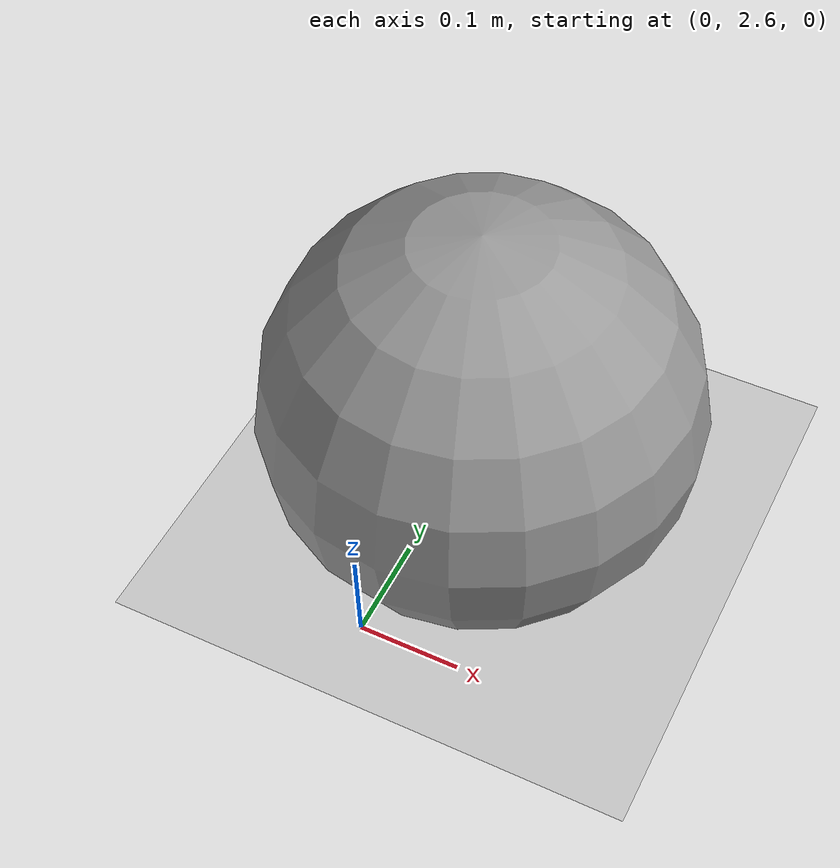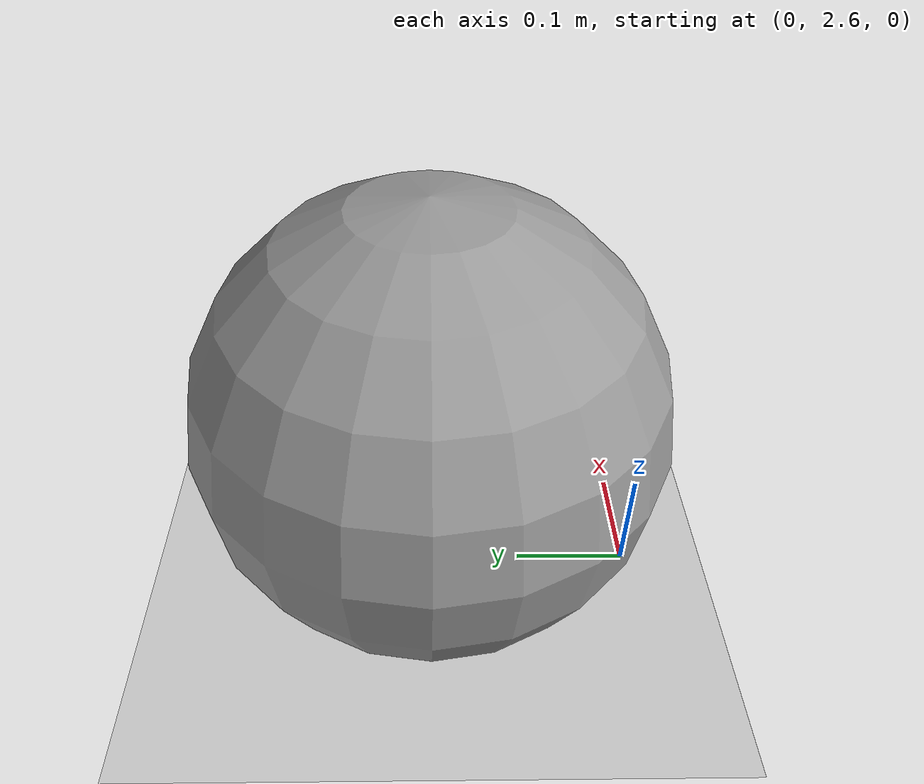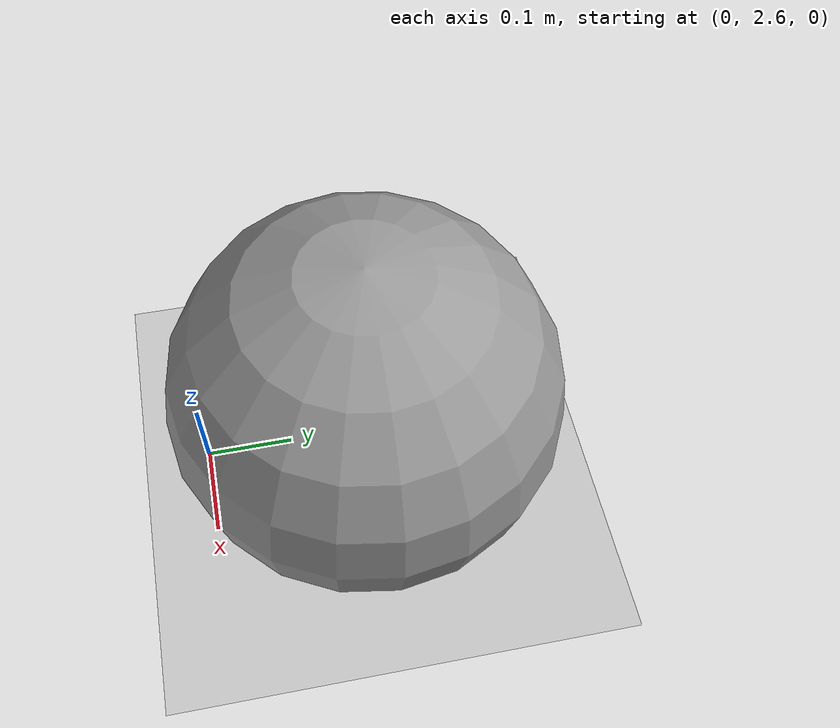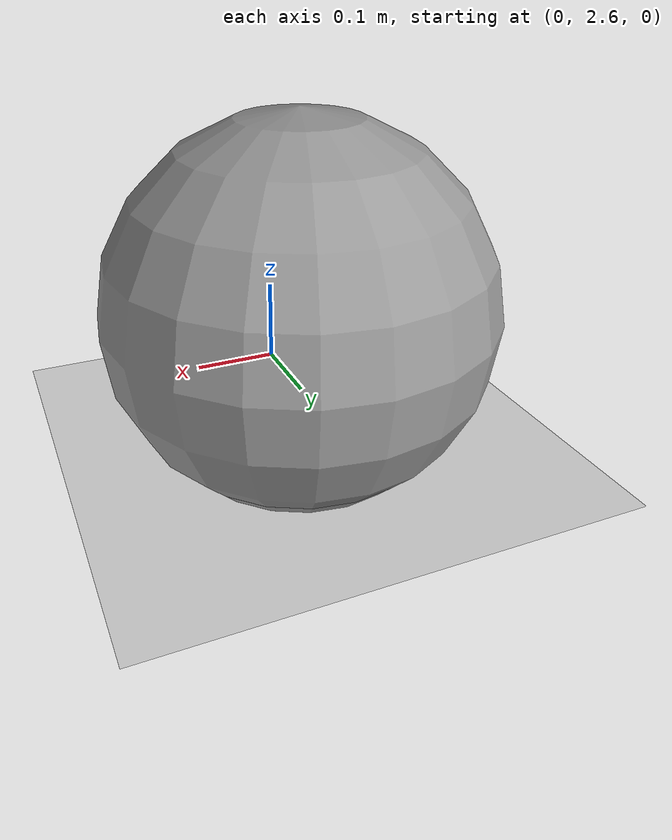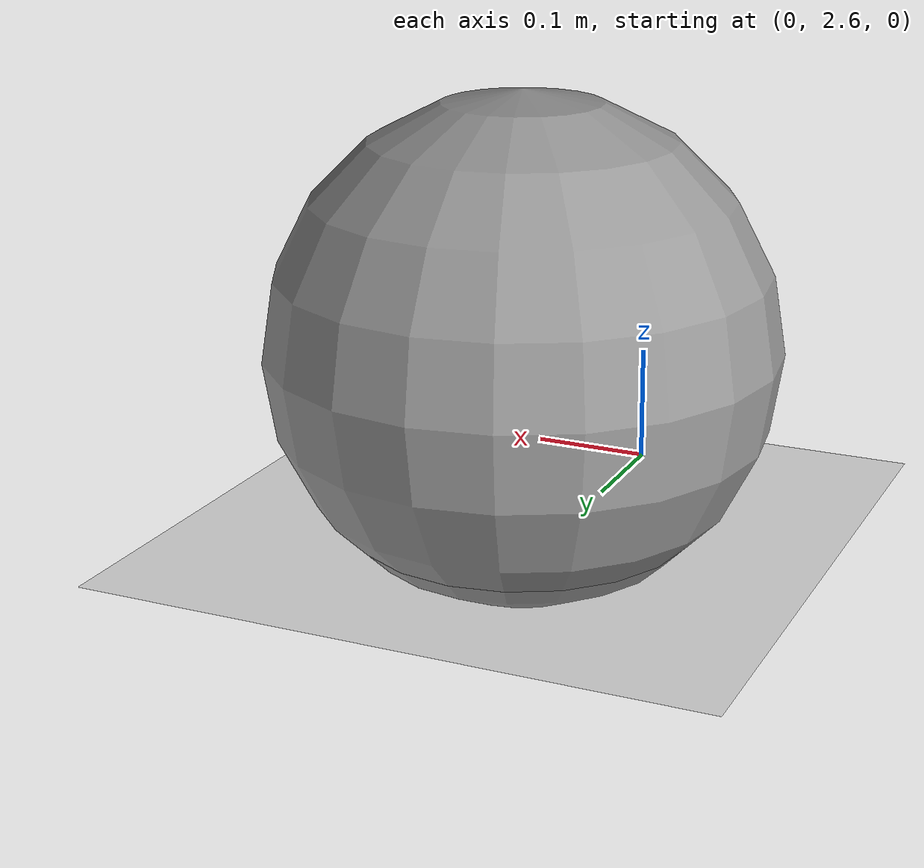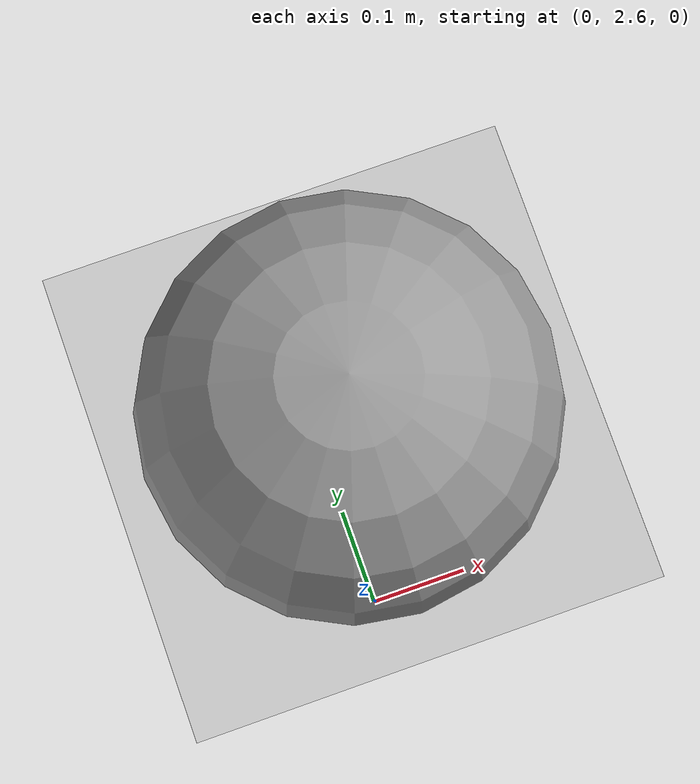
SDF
<sdf version="1.6">
 <world name="default">
  <light name="sun" type="directional">
   <pose>0 0 10 0 -0 0</pose>
   <diffuse>0.8 0.8 0.8 1</diffuse>
   <specular>0.2 0.2 0.2 1</specular>
   <attenuation>
    <range>1000</range>
    <constant>0.9</constant>
    <linear>0.01</linear>
    <quadratic>0.001</quadratic>
   </attenuation>
   <direction>0.5 0.1 -0.9</direction>
  </light>
  <scene><ambient>0.4 0.4 0.4 1</ambient><background>0.7 0.7 0.7 1</background><shadows>1</shadows></scene>
  <physics name="default_physics" default="0" type="ode">
   <max_step_size>0.01</max_step_size>
   <real_time_factor>1</real_time_factor>
   <real_time_update_rate>100</real_time_update_rate>
  </physics>
  <model name="ground_plane_0">
   <static>1</static>
   <link name="link">
    <collision name="collision">
     <geometry><plane><normal>0 0 1</normal><size>100 100</size></plane></geometry>
     <surface><friction><ode><mu>100</mu><mu2>50</mu2></ode></friction></surface>
    </collision>
    <visual name="visual">
     <cast_shadows>0</cast_shadows>
     <geometry><plane><normal>0 0 1</normal><size>100 100</size></plane></geometry>
     <material>
      <script><uri>file://media/materials/scripts/gazebo.material</uri><name>Gazebo/Grey</name></script>
     </material>
    </visual>
    <velocity_decay><linear>0</linear><angular>0</angular></velocity_decay>
   </link>
   <pose>0.497681 0 0 0 -0 0</pose>
  </model>
  <gravity>0 0 -9.8</gravity>
  <magnetic_field>6e-06 2.3e-05 -4.2e-05</magnetic_field>
  <atmosphere type="adiabatic"/>
  <spherical_coordinates>
   <surface_model>EARTH_WGS84</surface_model>
   <latitude_deg>0</latitude_deg>
   <longitude_deg>0</longitude_deg>
   <elevation>0</elevation>
   <heading_deg>0</heading_deg>
  </spherical_coordinates>
  <model name="unit_sphere_0">
   <pose>0.037181 2.78436 0.151338 0 -0 0</pose>
   <link name="link">
    <inertial>
     <mass>1</mass>
     <inertia><ixx>0.1</ixx><ixy>0</ixy><ixz>0</ixz><iyy>0.1</iyy><iyz>0</iyz><izz>0.1</izz></inertia>
    </inertial>
    <collision name="collision"><geometry><sphere><radius>0.211873</radius></sphere></geometry></collision>
    <visual name="visual">
     <geometry><sphere><radius>0.211873</radius></sphere></geometry>
     <material>
      <script><name>Gazebo/Grey</name><uri>file://media/materials/scripts/gazebo.material</uri></script>
     </material>
    </visual>
   </link>
  </model>
 </world>
</sdf>
